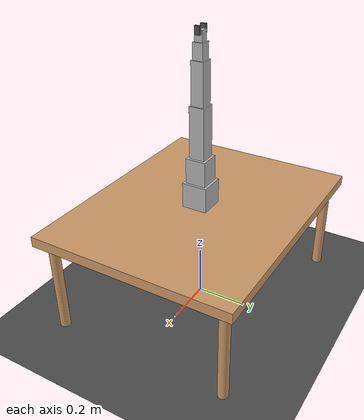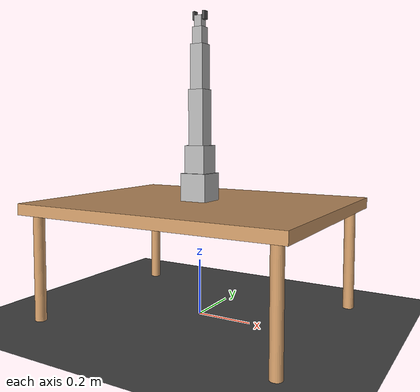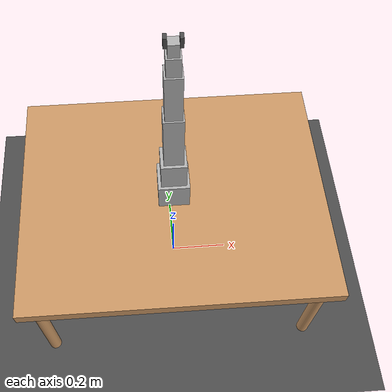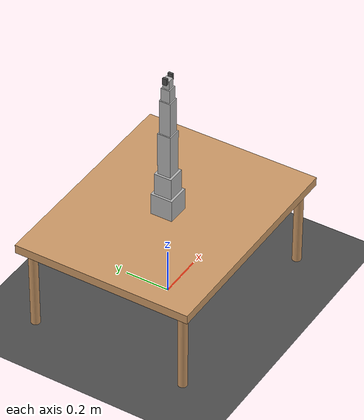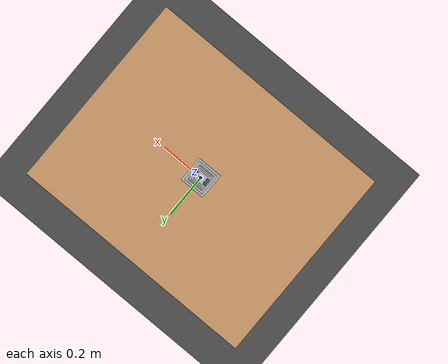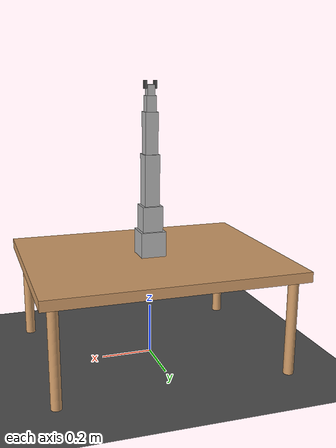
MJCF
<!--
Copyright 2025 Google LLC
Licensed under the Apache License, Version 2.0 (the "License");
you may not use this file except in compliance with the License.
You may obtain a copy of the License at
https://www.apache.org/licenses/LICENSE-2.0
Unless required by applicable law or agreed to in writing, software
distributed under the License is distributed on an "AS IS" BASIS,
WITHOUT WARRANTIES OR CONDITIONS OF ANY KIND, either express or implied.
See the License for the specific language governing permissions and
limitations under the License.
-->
<mujoco model="so100_scene">
  <compiler angle="radian" autolimits="true"/>

  <option cone="elliptic" impratio="10"/>

  <asset>
    <!-- Scene materials -->
    <material name="table_material" rgba="0.8 0.6 0.4 1.0"/>
    <material name="floor_material" rgba="0.3 0.3 0.3 1.0"/>
    <material name="so100_material" rgba="0.7 0.7 0.7 1.0"/>
    <material name="gripper_material" rgba="0.3 0.3 0.3 1.0"/>

  </asset>

  <default>
    <default class="so100">
      <joint axis="0 0 1" actuatorfrcrange="-50 50"/>
      <site group="4"/>
      <default class="rotation">
        <joint axis="0 0 1" range="-3.14159 3.14159" damping="5.0"/>
        <position ctrlrange="-3.14159 3.14159" kp="50"/>
      </default>
      <default class="pitch">
        <joint axis="0 1 0" range="-1.57 1.57" damping="10.0"/>
        <position ctrlrange="-1.57 1.57" kp="100"/>
      </default>
      <default class="elbow">
        <joint axis="0 1 0" range="-2.0 2.0" damping="8.0"/>
        <position ctrlrange="-2.0 2.0" kp="80"/>
      </default>
      <default class="wrist_pitch">
        <joint axis="0 1 0" range="-1.57 1.57" damping="5.0"/>
        <position ctrlrange="-1.57 1.57" kp="40"/>
      </default>
      <default class="wrist_roll">
        <joint axis="1 0 0" range="-3.14159 3.14159" damping="2.0"/>
        <position ctrlrange="-3.14159 3.14159" kp="20"/>
      </default>
      <default class="jaw">
        <joint axis="0 0 1" range="0 0.08" damping="1.0"/>
        <position ctrlrange="0 0.08" kp="100"/>
      </default>
      <default class="visual">
        <geom type="box" contype="0" conaffinity="0" density="0" group="2" material="so100_material"/>
      </default>
      <default class="collision">
        <geom group="3" type="box"/>
      </default>
    </default>
  </default>

  <visual>
    <headlight ambient="0.4 0.4 0.4" diffuse="0.8 0.8 0.8" specular="0.1 0.1 0.1"/>
    <rgba haze="0.15 0.25 0.35 1"/>
    <global offwidth="640" offheight="480"/>
  </visual>

  <worldbody>
    <!-- Lighting -->
    <light name="top_light" pos="0 0 2" dir="0 0 -1" diffuse="0.8 0.8 0.8" ambient="0.2 0.2 0.2"/>
    <light name="side_light1" pos="1 1 1.5" dir="-1 -1 -1" diffuse="0.4 0.4 0.4"/>
    <light name="side_light2" pos="-1 1 1.5" dir="1 -1 -1" diffuse="0.4 0.4 0.4"/>

    <!-- Floor -->
    <geom name="floor" type="plane" size="3 3 0.1" material="floor_material" friction="1 0.005 0.0001"/>

    <!-- Table -->
    <body name="table" pos="0 0 0.4">
      <geom name="table_top" type="box" size="0.5 0.4 0.02" pos="0 0 0" material="table_material"/>
      <!-- Table legs -->
      <geom name="leg1" type="cylinder" size="0.02 0.2" pos="0.45 0.35 -0.2" material="table_material"/>
      <geom name="leg2" type="cylinder" size="0.02 0.2" pos="0.45 -0.35 -0.2" material="table_material"/>
      <geom name="leg3" type="cylinder" size="0.02 0.2" pos="-0.45 0.35 -0.2" material="table_material"/>
      <geom name="leg4" type="cylinder" size="0.02 0.2" pos="-0.45 -0.35 -0.2" material="table_material"/>
    </body>

    <!-- Cameras -->
    <camera name="overhead_cam" pos="0 0 1.5" xyaxes="1 0 0 0 1 0" fovy="45"/>
    <camera name="worms_eye_cam" pos="0 0 0.1" xyaxes="1 0 0 0 0 1" fovy="45"/>
    <camera name="side_cam" pos="1.2 0.8 0.8" xyaxes="-0.8 0.6 0 -0.36 -0.48 0.8" fovy="45"/>

    <!-- SO100 ARM placed on the table -->
    <body name="so100/base_link" childclass="so100" pos="0 0 0.42">
      <inertial pos="0 0 0.05" mass="2.0" diaginertia="0.01 0.01 0.01"/>
      <geom name="base_visual" type="box" size="0.05 0.05 0.05" pos="0 0 0.05" contype="0" conaffinity="0" density="0" group="2" rgba="0.7 0.7 0.7 1.0"/>
      <geom name="base_collision" type="box" size="0.05 0.05 0.05" pos="0 0 0.05" group="3"/>

      <body name="so100/shoulder_link" pos="0 0 0.1">
        <inertial pos="0 0 0.05" mass="1.5" diaginertia="0.005 0.005 0.005"/>
        <joint name="so100/rotation" axis="0 0 1" range="-3.14159 3.14159" damping="5.0" actuatorfrcrange="-50 50"/>
        <geom name="shoulder_visual" type="box" size="0.04 0.04 0.05" pos="0 0 0.05" contype="0" conaffinity="0" density="0" group="2" rgba="0.7 0.7 0.7 1.0"/>
        <geom name="shoulder_collision" type="box" size="0.04 0.04 0.05" pos="0 0 0.05" group="3"/>

        <body name="so100/upper_arm_link" pos="0 0 0.1">
          <inertial pos="0 0 0.1" mass="1.2" diaginertia="0.01 0.01 0.002"/>
          <joint name="so100/pitch" axis="0 1 0" range="-1.57 1.57" damping="10.0" actuatorfrcrange="-50 50"/>
          <geom name="upper_arm_visual" type="box" size="0.03 0.03 0.1" pos="0 0 0.1" contype="0" conaffinity="0" density="0" group="2" rgba="0.7 0.7 0.7 1.0"/>
          <geom name="upper_arm_collision" type="box" size="0.03 0.03 0.1" pos="0 0 0.1" group="3"/>

          <body name="so100/forearm_link" pos="0 0 0.2">
            <inertial pos="0 0 0.08" mass="0.8" diaginertia="0.005 0.005 0.001"/>
            <joint name="so100/elbow" axis="0 1 0" range="-2.0 2.0" damping="8.0" actuatorfrcrange="-50 50"/>
            <geom name="forearm_visual" type="box" size="0.025 0.025 0.08" pos="0 0 0.08" contype="0" conaffinity="0" density="0" group="2" rgba="0.7 0.7 0.7 1.0"/>
            <geom name="forearm_collision" type="box" size="0.025 0.025 0.08" pos="0 0 0.08" group="3"/>

            <body name="so100/wrist_link" pos="0 0 0.16">
              <inertial pos="0 0 0.03" mass="0.4" diaginertia="0.001 0.001 0.001"/>
              <joint name="so100/wrist_pitch" axis="0 1 0" range="-1.57 1.57" damping="5.0" actuatorfrcrange="-50 50"/>
              <geom name="wrist_visual" type="box" size="0.02 0.02 0.03" pos="0 0 0.03" contype="0" conaffinity="0" density="0" group="2" rgba="0.7 0.7 0.7 1.0"/>
              <geom name="wrist_collision" type="box" size="0.02 0.02 0.03" pos="0 0 0.03" group="3"/>

              <body name="so100/hand_link" pos="0 0 0.06">
                <inertial pos="0 0 0.02" mass="0.2" diaginertia="0.0005 0.0005 0.0005"/>
                <joint name="so100/wrist_roll" axis="1 0 0" range="-3.14159 3.14159" damping="2.0" actuatorfrcrange="-50 50"/>
                <geom name="hand_visual" type="box" size="0.015 0.015 0.02" pos="0 0 0.02" contype="0" conaffinity="0" density="0" group="2" rgba="0.7 0.7 0.7 1.0"/>
                <geom name="hand_collision" type="box" size="0.015 0.015 0.02" pos="0 0 0.02" group="3"/>

                <site name="so100/gripper" pos="0 0 0.04" group="5"/>

                <body name="so100/gripper_left" pos="0.02 0 0.04">
                  <inertial pos="0 0 0.015" mass="0.05" diaginertia="0.0001 0.0001 0.0001"/>
                  <joint name="so100/jaw_left" axis="0 0 1" range="0 0.08" damping="1.0" actuatorfrcrange="-50 50"/>
                  <geom name="gripper_left_visual" type="box" size="0.005 0.01 0.015" contype="0" conaffinity="0" density="0" group="2" rgba="0.3 0.3 0.3 1.0"/>
                  <geom name="gripper_left_collision" type="box" size="0.005 0.01 0.015" group="3"/>
                </body>

                <body name="so100/gripper_right" pos="-0.02 0 0.04">
                  <inertial pos="0 0 0.015" mass="0.05" diaginertia="0.0001 0.0001 0.0001"/>
                  <joint name="so100/jaw_right" axis="0 0 1" range="0 0.08" damping="1.0" actuatorfrcrange="-50 50"/>
                  <geom name="gripper_right_visual" type="box" size="0.005 0.01 0.015" contype="0" conaffinity="0" density="0" group="2" rgba="0.3 0.3 0.3 1.0"/>
                  <geom name="gripper_right_collision" type="box" size="0.005 0.01 0.015" group="3"/>
                </body>
              </body>
            </body>
          </body>
        </body>
      </body>
    </body>
  </worldbody>

  <contact>
    <exclude body1="so100/base_link" body2="so100/shoulder_link"/>
  </contact>

  <equality>
    <joint joint1="so100/jaw_left" joint2="so100/jaw_right" polycoef="0 1 0 0 0"/>
  </equality>

  <actuator>
    <position name="so100/rotation_actuator" joint="so100/rotation" ctrlrange="-3.14159 3.14159" kp="50"/>
    <position name="so100/pitch_actuator" joint="so100/pitch" ctrlrange="-1.57 1.57" kp="100"/>
    <position name="so100/elbow_actuator" joint="so100/elbow" ctrlrange="-2.0 2.0" kp="80"/>
    <position name="so100/wrist_pitch_actuator" joint="so100/wrist_pitch" ctrlrange="-1.57 1.57" kp="40"/>
    <position name="so100/wrist_roll_actuator" joint="so100/wrist_roll" ctrlrange="-3.14159 3.14159" kp="20"/>
    <position name="so100/jaw_actuator" joint="so100/jaw_left" ctrlrange="0 0.08" kp="100"/>
  </actuator>

  <keyframe>
    <key name="neutral_pose" qpos="0 -0.5 1.0 -0.5 0.0 0.02 0.02"/>
  </keyframe>
</mujoco>
